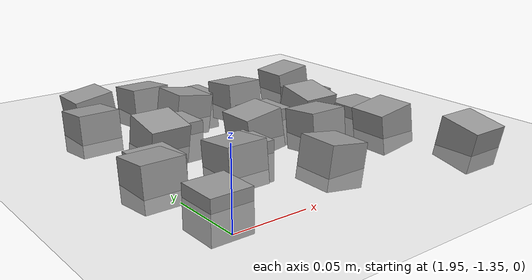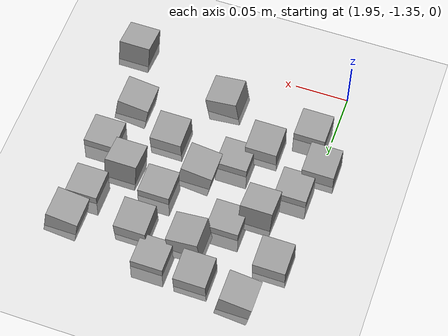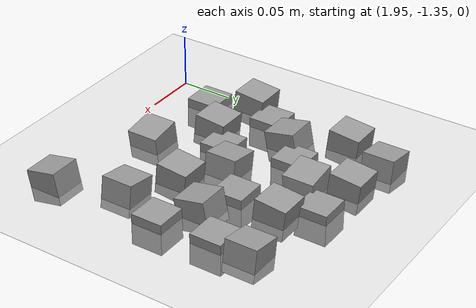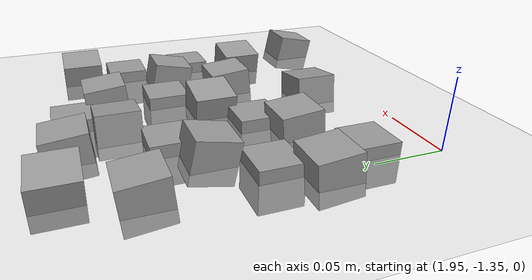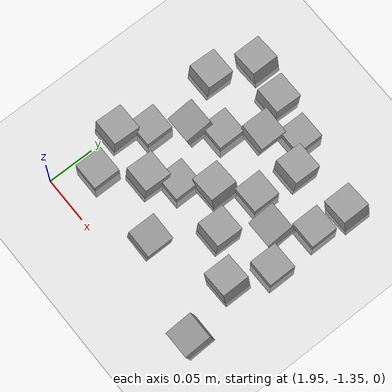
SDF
<sdf version="1.7">
 <world name="default">
  <model name="ground_plane">
   <static>1</static>
   <link name="link">
    <collision name="collision">
     <geometry><plane><normal>0 0 1</normal><size>100 100</size></plane></geometry>
     <surface><friction><ode><mu>100</mu><mu2>50</mu2></ode></friction></surface>
    </collision>
    <visual name="visual">
     <cast_shadows>0</cast_shadows>
     <geometry><plane><normal>0 0 1</normal><size>100 100</size></plane></geometry>
     <material>
      <script><uri>file://media/materials/scripts/gazebo.material</uri><name>Gazebo/Grey</name></script>
     </material>
    </visual>
   </link>
  </model>
  <model name="stone_road_10">
   <link name="link_0_clone_1">
    <inertial>
     <mass>1</mass>
     <inertia>
      <ixx>0.166667</ixx>
      <ixy>0</ixy>
      <ixz>0</ixz>
      <iyy>0.166667</iyy>
      <iyz>0</iyz>
      <izz>0.166667</izz>
     </inertia>
    </inertial>
    <pose>-0.022921 -0.129606 0.003778 0.2 -0 0</pose>
    <kinematic>1</kinematic>
    <visual name="visual">
     <geometry><box><size>0.03 0.03 0.03</size></box></geometry>
     <material>
      <lighting>1</lighting>
      <script><uri>file://media/materials/scripts/gazebo.material</uri><name>Gazebo/Grey</name></script>
      <shader type="pixel"><normal_map>__default__</normal_map></shader>
      <ambient>0.3 0.3 0.3 1</ambient>
      <diffuse>0.7 0.7 0.7 1</diffuse>
      <specular>0.01 0.01 0.01 1</specular>
      <emissive>0 0 0 1</emissive>
     </material>
    </visual>
    <collision name="collision">
     <geometry><box><size>0.03 0.03 0.03</size></box></geometry>
     <surface>
      <friction>
       <ode><mu>1</mu><mu2>1</mu2><fdir1>0 0 0</fdir1><slip1>0</slip1><slip2>0</slip2></ode>
       <torsional>
        <coefficient>1</coefficient>
        <patch_radius>0</patch_radius>
        <surface_radius>0</surface_radius>
        <use_patch_radius>1</use_patch_radius>
        <ode><slip>0</slip></ode>
       </torsional>
      </friction>
      <bounce><restitution_coefficient>0</restitution_coefficient><threshold>1e+06</threshold></bounce>
      <contact>
       <collide_without_contact>0</collide_without_contact>
       <collide_without_contact_bitmask>1</collide_without_contact_bitmask>
       <collide_bitmask>1</collide_bitmask>
       <ode>
        <soft_cfm>0</soft_cfm>
        <soft_erp>0.2</soft_erp>
        <kp>1e+13</kp>
        <kd>1</kd>
        <max_vel>0.01</max_vel>
        <min_depth>0</min_depth>
       </ode>
       <bullet>
        <split_impulse>1</split_impulse>
        <split_impulse_penetration_threshold>-0.01</split_impulse_penetration_threshold>
        <soft_cfm>0</soft_cfm>
        <soft_erp>0.2</soft_erp>
        <kp>1e+13</kp>
        <kd>1</kd>
       </bullet>
      </contact>
     </surface>
    </collision>
   </link>
   <link name="link_0_clone_12">
    <inertial>
     <mass>1</mass>
     <inertia>
      <ixx>0.166667</ixx>
      <ixy>0</ixy>
      <ixz>0</ixz>
      <iyy>0.166667</iyy>
      <iyz>0</iyz>
      <izz>0.166667</izz>
     </inertia>
    </inertial>
    <pose>0.142624 -0.262715 0.003778 0.2 -0 0</pose>
    <kinematic>1</kinematic>
    <visual name="visual">
     <geometry><box><size>0.03 0.03 0.03</size></box></geometry>
     <material>
      <lighting>1</lighting>
      <script><uri>file://media/materials/scripts/gazebo.material</uri><name>Gazebo/Grey</name></script>
      <shader type="pixel"><normal_map>__default__</normal_map></shader>
      <ambient>0.3 0.3 0.3 1</ambient>
      <diffuse>0.7 0.7 0.7 1</diffuse>
      <specular>0.01 0.01 0.01 1</specular>
      <emissive>0 0 0 1</emissive>
     </material>
    </visual>
    <collision name="collision">
     <geometry><box><size>0.03 0.03 0.03</size></box></geometry>
     <surface>
      <friction>
       <ode><mu>1</mu><mu2>1</mu2><fdir1>0 0 0</fdir1><slip1>0</slip1><slip2>0</slip2></ode>
       <torsional>
        <coefficient>1</coefficient>
        <patch_radius>0</patch_radius>
        <surface_radius>0</surface_radius>
        <use_patch_radius>1</use_patch_radius>
        <ode><slip>0</slip></ode>
       </torsional>
      </friction>
      <bounce><restitution_coefficient>0</restitution_coefficient><threshold>1e+06</threshold></bounce>
      <contact>
       <collide_without_contact>0</collide_without_contact>
       <collide_without_contact_bitmask>1</collide_without_contact_bitmask>
       <collide_bitmask>1</collide_bitmask>
       <ode>
        <soft_cfm>0</soft_cfm>
        <soft_erp>0.2</soft_erp>
        <kp>1e+13</kp>
        <kd>1</kd>
        <max_vel>0.01</max_vel>
        <min_depth>0</min_depth>
       </ode>
       <bullet>
        <split_impulse>1</split_impulse>
        <split_impulse_penetration_threshold>-0.01</split_impulse_penetration_threshold>
        <soft_cfm>0</soft_cfm>
        <soft_erp>0.2</soft_erp>
        <kp>1e+13</kp>
        <kd>1</kd>
       </bullet>
      </contact>
     </surface>
    </collision>
   </link>
   <link name="link_0_clone_13">
    <inertial>
     <mass>1</mass>
     <inertia>
      <ixx>0.166667</ixx>
      <ixy>0</ixy>
      <ixz>0</ixz>
      <iyy>0.166667</iyy>
      <iyz>0</iyz>
      <izz>0.166667</izz>
     </inertia>
    </inertial>
    <pose>0.107601 -0.134881 0.003778 0.2 -0 0</pose>
    <kinematic>1</kinematic>
    <visual name="visual">
     <geometry><box><size>0.03 0.03 0.03</size></box></geometry>
     <material>
      <lighting>1</lighting>
      <script><uri>file://media/materials/scripts/gazebo.material</uri><name>Gazebo/Grey</name></script>
      <shader type="pixel"><normal_map>__default__</normal_map></shader>
      <ambient>0.3 0.3 0.3 1</ambient>
      <diffuse>0.7 0.7 0.7 1</diffuse>
      <specular>0.01 0.01 0.01 1</specular>
      <emissive>0 0 0 1</emissive>
     </material>
    </visual>
    <collision name="collision">
     <geometry><box><size>0.03 0.03 0.03</size></box></geometry>
     <surface>
      <friction>
       <ode><mu>1</mu><mu2>1</mu2><fdir1>0 0 0</fdir1><slip1>0</slip1><slip2>0</slip2></ode>
       <torsional>
        <coefficient>1</coefficient>
        <patch_radius>0</patch_radius>
        <surface_radius>0</surface_radius>
        <use_patch_radius>1</use_patch_radius>
        <ode><slip>0</slip></ode>
       </torsional>
      </friction>
      <bounce><restitution_coefficient>0</restitution_coefficient><threshold>1e+06</threshold></bounce>
      <contact>
       <collide_without_contact>0</collide_without_contact>
       <collide_without_contact_bitmask>1</collide_without_contact_bitmask>
       <collide_bitmask>1</collide_bitmask>
       <ode>
        <soft_cfm>0</soft_cfm>
        <soft_erp>0.2</soft_erp>
        <kp>1e+13</kp>
        <kd>1</kd>
        <max_vel>0.01</max_vel>
        <min_depth>0</min_depth>
       </ode>
       <bullet>
        <split_impulse>1</split_impulse>
        <split_impulse_penetration_threshold>-0.01</split_impulse_penetration_threshold>
        <soft_cfm>0</soft_cfm>
        <soft_erp>0.2</soft_erp>
        <kp>1e+13</kp>
        <kd>1</kd>
       </bullet>
      </contact>
     </surface>
    </collision>
   </link>
   <link name="link_0_clone_2_clone_0">
    <inertial>
     <mass>1</mass>
     <inertia>
      <ixx>0.166667</ixx>
      <ixy>0</ixy>
      <ixz>0</ixz>
      <iyy>0.166667</iyy>
      <iyz>0</iyz>
      <izz>0.166667</izz>
     </inertia>
    </inertial>
    <pose>0.026852 -0.0813 0.003778 0 0.15 0</pose>
    <kinematic>1</kinematic>
    <visual name="visual">
     <geometry><box><size>0.03 0.03 0.03</size></box></geometry>
     <material>
      <lighting>1</lighting>
      <script><uri>file://media/materials/scripts/gazebo.material</uri><name>Gazebo/Grey</name></script>
      <shader type="pixel"><normal_map>__default__</normal_map></shader>
      <ambient>0.3 0.3 0.3 1</ambient>
      <diffuse>0.7 0.7 0.7 1</diffuse>
      <specular>0.01 0.01 0.01 1</specular>
      <emissive>0 0 0 1</emissive>
     </material>
    </visual>
    <collision name="collision">
     <geometry><box><size>0.03 0.03 0.03</size></box></geometry>
     <surface>
      <friction>
       <ode><mu>1</mu><mu2>1</mu2><fdir1>0 0 0</fdir1><slip1>0</slip1><slip2>0</slip2></ode>
       <torsional>
        <coefficient>1</coefficient>
        <patch_radius>0</patch_radius>
        <surface_radius>0</surface_radius>
        <use_patch_radius>1</use_patch_radius>
        <ode><slip>0</slip></ode>
       </torsional>
      </friction>
      <bounce><restitution_coefficient>0</restitution_coefficient><threshold>1e+06</threshold></bounce>
      <contact>
       <collide_without_contact>0</collide_without_contact>
       <collide_without_contact_bitmask>1</collide_without_contact_bitmask>
       <collide_bitmask>1</collide_bitmask>
       <ode>
        <soft_cfm>0</soft_cfm>
        <soft_erp>0.2</soft_erp>
        <kp>1e+13</kp>
        <kd>1</kd>
        <max_vel>0.01</max_vel>
        <min_depth>0</min_depth>
       </ode>
       <bullet>
        <split_impulse>1</split_impulse>
        <split_impulse_penetration_threshold>-0.01</split_impulse_penetration_threshold>
        <soft_cfm>0</soft_cfm>
        <soft_erp>0.2</soft_erp>
        <kp>1e+13</kp>
        <kd>1</kd>
       </bullet>
      </contact>
     </surface>
    </collision>
   </link>
   <link name="link_0_clone_2_clone_2_clone_0">
    <inertial>
     <mass>1</mass>
     <inertia>
      <ixx>0.166667</ixx>
      <ixy>0</ixy>
      <ixz>0</ixz>
      <iyy>0.166667</iyy>
      <iyz>0</iyz>
      <izz>0.166667</izz>
     </inertia>
    </inertial>
    <pose>-0.032874 -0.039714 0.003778 0 -0.15 0</pose>
    <kinematic>1</kinematic>
    <visual name="visual">
     <geometry><box><size>0.03 0.03 0.03</size></box></geometry>
     <material>
      <lighting>1</lighting>
      <script><uri>file://media/materials/scripts/gazebo.material</uri><name>Gazebo/Grey</name></script>
      <shader type="pixel"><normal_map>__default__</normal_map></shader>
      <ambient>0.3 0.3 0.3 1</ambient>
      <diffuse>0.7 0.7 0.7 1</diffuse>
      <specular>0.01 0.01 0.01 1</specular>
      <emissive>0 0 0 1</emissive>
     </material>
    </visual>
    <collision name="collision">
     <geometry><box><size>0.03 0.03 0.03</size></box></geometry>
     <surface>
      <friction>
       <ode><mu>1</mu><mu2>1</mu2><fdir1>0 0 0</fdir1><slip1>0</slip1><slip2>0</slip2></ode>
       <torsional>
        <coefficient>1</coefficient>
        <patch_radius>0</patch_radius>
        <surface_radius>0</surface_radius>
        <use_patch_radius>1</use_patch_radius>
        <ode><slip>0</slip></ode>
       </torsional>
      </friction>
      <bounce><restitution_coefficient>0</restitution_coefficient><threshold>1e+06</threshold></bounce>
      <contact>
       <collide_without_contact>0</collide_without_contact>
       <collide_without_contact_bitmask>1</collide_without_contact_bitmask>
       <collide_bitmask>1</collide_bitmask>
       <ode>
        <soft_cfm>0</soft_cfm>
        <soft_erp>0.2</soft_erp>
        <kp>1e+13</kp>
        <kd>1</kd>
        <max_vel>0.01</max_vel>
        <min_depth>0</min_depth>
       </ode>
       <bullet>
        <split_impulse>1</split_impulse>
        <split_impulse_penetration_threshold>-0.01</split_impulse_penetration_threshold>
        <soft_cfm>0</soft_cfm>
        <soft_erp>0.2</soft_erp>
        <kp>1e+13</kp>
        <kd>1</kd>
       </bullet>
      </contact>
     </surface>
    </collision>
   </link>
   <link name="link_0_clone_2_clone_2_clone_13_clone_clone_10">
    <inertial>
     <mass>1</mass>
     <inertia>
      <ixx>0.166667</ixx>
      <ixy>0</ixy>
      <ixz>0</ixz>
      <iyy>0.166667</iyy>
      <iyz>0</iyz>
      <izz>0.166667</izz>
     </inertia>
    </inertial>
    <pose>-0.006825 -0.196489 0.003778 -0.1 0 0</pose>
    <kinematic>1</kinematic>
    <visual name="visual">
     <geometry><box><size>0.03 0.03 0.03</size></box></geometry>
     <material>
      <lighting>1</lighting>
      <script><uri>file://media/materials/scripts/gazebo.material</uri><name>Gazebo/Grey</name></script>
      <shader type="pixel"><normal_map>__default__</normal_map></shader>
      <ambient>0.3 0.3 0.3 1</ambient>
      <diffuse>0.7 0.7 0.7 1</diffuse>
      <specular>0.01 0.01 0.01 1</specular>
      <emissive>0 0 0 1</emissive>
     </material>
    </visual>
    <collision name="collision">
     <geometry><box><size>0.03 0.03 0.03</size></box></geometry>
     <surface>
      <friction>
       <ode><mu>1</mu><mu2>1</mu2><fdir1>0 0 0</fdir1><slip1>0</slip1><slip2>0</slip2></ode>
       <torsional>
        <coefficient>1</coefficient>
        <patch_radius>0</patch_radius>
        <surface_radius>0</surface_radius>
        <use_patch_radius>1</use_patch_radius>
        <ode><slip>0</slip></ode>
       </torsional>
      </friction>
      <bounce><restitution_coefficient>0</restitution_coefficient><threshold>1e+06</threshold></bounce>
      <contact>
       <collide_without_contact>0</collide_without_contact>
       <collide_without_contact_bitmask>1</collide_without_contact_bitmask>
       <collide_bitmask>1</collide_bitmask>
       <ode>
        <soft_cfm>0</soft_cfm>
        <soft_erp>0.2</soft_erp>
        <kp>1e+13</kp>
        <kd>1</kd>
        <max_vel>0.01</max_vel>
        <min_depth>0</min_depth>
       </ode>
       <bullet>
        <split_impulse>1</split_impulse>
        <split_impulse_penetration_threshold>-0.01</split_impulse_penetration_threshold>
        <soft_cfm>0</soft_cfm>
        <soft_erp>0.2</soft_erp>
        <kp>1e+13</kp>
        <kd>1</kd>
       </bullet>
      </contact>
     </surface>
    </collision>
   </link>
   <link name="link_0_clone_2_clone_2_clone_13_clone_clone_12">
    <inertial>
     <mass>1</mass>
     <inertia>
      <ixx>0.166667</ixx>
      <ixy>0</ixy>
      <ixz>0</ixz>
      <iyy>0.166667</iyy>
      <iyz>0</iyz>
      <izz>0.166667</izz>
     </inertia>
    </inertial>
    <pose>0.078701 -0.177208 0.003778 -0.1 0 0</pose>
    <kinematic>1</kinematic>
    <visual name="visual">
     <geometry><box><size>0.03 0.03 0.03</size></box></geometry>
     <material>
      <lighting>1</lighting>
      <script><uri>file://media/materials/scripts/gazebo.material</uri><name>Gazebo/Grey</name></script>
      <shader type="pixel"><normal_map>__default__</normal_map></shader>
      <ambient>0.3 0.3 0.3 1</ambient>
      <diffuse>0.7 0.7 0.7 1</diffuse>
      <specular>0.01 0.01 0.01 1</specular>
      <emissive>0 0 0 1</emissive>
     </material>
    </visual>
    <collision name="collision">
     <geometry><box><size>0.03 0.03 0.03</size></box></geometry>
     <surface>
      <friction>
       <ode><mu>1</mu><mu2>1</mu2><fdir1>0 0 0</fdir1><slip1>0</slip1><slip2>0</slip2></ode>
       <torsional>
        <coefficient>1</coefficient>
        <patch_radius>0</patch_radius>
        <surface_radius>0</surface_radius>
        <use_patch_radius>1</use_patch_radius>
        <ode><slip>0</slip></ode>
       </torsional>
      </friction>
      <bounce><restitution_coefficient>0</restitution_coefficient><threshold>1e+06</threshold></bounce>
      <contact>
       <collide_without_contact>0</collide_without_contact>
       <collide_without_contact_bitmask>1</collide_without_contact_bitmask>
       <collide_bitmask>1</collide_bitmask>
       <ode>
        <soft_cfm>0</soft_cfm>
        <soft_erp>0.2</soft_erp>
        <kp>1e+13</kp>
        <kd>1</kd>
        <max_vel>0.01</max_vel>
        <min_depth>0</min_depth>
       </ode>
       <bullet>
        <split_impulse>1</split_impulse>
        <split_impulse_penetration_threshold>-0.01</split_impulse_penetration_threshold>
        <soft_cfm>0</soft_cfm>
        <soft_erp>0.2</soft_erp>
        <kp>1e+13</kp>
        <kd>1</kd>
       </bullet>
      </contact>
     </surface>
    </collision>
   </link>
   <link name="link_0_clone_2_clone_2_clone_13_clone_clone_16_clone_14">
    <inertial>
     <mass>1</mass>
     <inertia>
      <ixx>0.166667</ixx>
      <ixy>0</ixy>
      <ixz>0</ixz>
      <iyy>0.166667</iyy>
      <iyz>0</iyz>
      <izz>0.166667</izz>
     </inertia>
    </inertial>
    <pose>0.051911 -0.054424 -0.006222 0 -0 0</pose>
    <kinematic>1</kinematic>
    <visual name="visual">
     <geometry><box><size>0.03 0.03 0.03</size></box></geometry>
     <material>
      <lighting>1</lighting>
      <script><uri>file://media/materials/scripts/gazebo.material</uri><name>Gazebo/Grey</name></script>
      <shader type="pixel"><normal_map>__default__</normal_map></shader>
      <ambient>0.3 0.3 0.3 1</ambient>
      <diffuse>0.7 0.7 0.7 1</diffuse>
      <specular>0.01 0.01 0.01 1</specular>
      <emissive>0 0 0 1</emissive>
     </material>
    </visual>
    <collision name="collision">
     <geometry><box><size>0.03 0.03 0.03</size></box></geometry>
     <surface>
      <friction>
       <ode><mu>1</mu><mu2>1</mu2><fdir1>0 0 0</fdir1><slip1>0</slip1><slip2>0</slip2></ode>
       <torsional>
        <coefficient>1</coefficient>
        <patch_radius>0</patch_radius>
        <surface_radius>0</surface_radius>
        <use_patch_radius>1</use_patch_radius>
        <ode><slip>0</slip></ode>
       </torsional>
      </friction>
      <bounce><restitution_coefficient>0</restitution_coefficient><threshold>1e+06</threshold></bounce>
      <contact>
       <collide_without_contact>0</collide_without_contact>
       <collide_without_contact_bitmask>1</collide_without_contact_bitmask>
       <collide_bitmask>1</collide_bitmask>
       <ode>
        <soft_cfm>0</soft_cfm>
        <soft_erp>0.2</soft_erp>
        <kp>1e+13</kp>
        <kd>1</kd>
        <max_vel>0.01</max_vel>
        <min_depth>0</min_depth>
       </ode>
       <bullet>
        <split_impulse>1</split_impulse>
        <split_impulse_penetration_threshold>-0.01</split_impulse_penetration_threshold>
        <soft_cfm>0</soft_cfm>
        <soft_erp>0.2</soft_erp>
        <kp>1e+13</kp>
        <kd>1</kd>
       </bullet>
      </contact>
     </surface>
    </collision>
   </link>
   <link name="link_0_clone_2_clone_2_clone_13_clone_clone_16_clone_15">
    <inertial>
     <mass>1</mass>
     <inertia>
      <ixx>0.166667</ixx>
      <ixy>0</ixy>
      <ixz>0</ixz>
      <iyy>0.166667</iyy>
      <iyz>0</iyz>
      <izz>0.166667</izz>
     </inertia>
    </inertial>
    <pose>0.133032 -0.103459 -0.006222 0 -0 0</pose>
    <kinematic>1</kinematic>
    <visual name="visual">
     <geometry><box><size>0.03 0.03 0.03</size></box></geometry>
     <material>
      <lighting>1</lighting>
      <script><uri>file://media/materials/scripts/gazebo.material</uri><name>Gazebo/Grey</name></script>
      <shader type="pixel"><normal_map>__default__</normal_map></shader>
      <ambient>0.3 0.3 0.3 1</ambient>
      <diffuse>0.7 0.7 0.7 1</diffuse>
      <specular>0.01 0.01 0.01 1</specular>
      <emissive>0 0 0 1</emissive>
     </material>
    </visual>
    <collision name="collision">
     <geometry><box><size>0.03 0.03 0.03</size></box></geometry>
     <surface>
      <friction>
       <ode><mu>1</mu><mu2>1</mu2><fdir1>0 0 0</fdir1><slip1>0</slip1><slip2>0</slip2></ode>
       <torsional>
        <coefficient>1</coefficient>
        <patch_radius>0</patch_radius>
        <surface_radius>0</surface_radius>
        <use_patch_radius>1</use_patch_radius>
        <ode><slip>0</slip></ode>
       </torsional>
      </friction>
      <bounce><restitution_coefficient>0</restitution_coefficient><threshold>1e+06</threshold></bounce>
      <contact>
       <collide_without_contact>0</collide_without_contact>
       <collide_without_contact_bitmask>1</collide_without_contact_bitmask>
       <collide_bitmask>1</collide_bitmask>
       <ode>
        <soft_cfm>0</soft_cfm>
        <soft_erp>0.2</soft_erp>
        <kp>1e+13</kp>
        <kd>1</kd>
        <max_vel>0.01</max_vel>
        <min_depth>0</min_depth>
       </ode>
       <bullet>
        <split_impulse>1</split_impulse>
        <split_impulse_penetration_threshold>-0.01</split_impulse_penetration_threshold>
        <soft_cfm>0</soft_cfm>
        <soft_erp>0.2</soft_erp>
        <kp>1e+13</kp>
        <kd>1</kd>
       </bullet>
      </contact>
     </surface>
    </collision>
   </link>
   <link name="link_0_clone_2_clone_2_clone_13_clone_clone_16_clone_16">
    <inertial>
     <mass>1</mass>
     <inertia>
      <ixx>0.166667</ixx>
      <ixy>0</ixy>
      <ixz>0</ixz>
      <iyy>0.166667</iyy>
      <iyz>0</iyz>
      <izz>0.166667</izz>
     </inertia>
    </inertial>
    <pose>0.071475 -0.124425 -0.006222 0 -0 0</pose>
    <kinematic>1</kinematic>
    <visual name="visual">
     <geometry><box><size>0.03 0.03 0.03</size></box></geometry>
     <material>
      <lighting>1</lighting>
      <script><uri>file://media/materials/scripts/gazebo.material</uri><name>Gazebo/Grey</name></script>
      <shader type="pixel"><normal_map>__default__</normal_map></shader>
      <ambient>0.3 0.3 0.3 1</ambient>
      <diffuse>0.7 0.7 0.7 1</diffuse>
      <specular>0.01 0.01 0.01 1</specular>
      <emissive>0 0 0 1</emissive>
     </material>
    </visual>
    <collision name="collision">
     <geometry><box><size>0.03 0.03 0.03</size></box></geometry>
     <surface>
      <friction>
       <ode><mu>1</mu><mu2>1</mu2><fdir1>0 0 0</fdir1><slip1>0</slip1><slip2>0</slip2></ode>
       <torsional>
        <coefficient>1</coefficient>
        <patch_radius>0</patch_radius>
        <surface_radius>0</surface_radius>
        <use_patch_radius>1</use_patch_radius>
        <ode><slip>0</slip></ode>
       </torsional>
      </friction>
      <bounce><restitution_coefficient>0</restitution_coefficient><threshold>1e+06</threshold></bounce>
      <contact>
       <collide_without_contact>0</collide_without_contact>
       <collide_without_contact_bitmask>1</collide_without_contact_bitmask>
       <collide_bitmask>1</collide_bitmask>
       <ode>
        <soft_cfm>0</soft_cfm>
        <soft_erp>0.2</soft_erp>
        <kp>1e+13</kp>
        <kd>1</kd>
        <max_vel>0.01</max_vel>
        <min_depth>0</min_depth>
       </ode>
       <bullet>
        <split_impulse>1</split_impulse>
        <split_impulse_penetration_threshold>-0.01</split_impulse_penetration_threshold>
        <soft_cfm>0</soft_cfm>
        <soft_erp>0.2</soft_erp>
        <kp>1e+13</kp>
        <kd>1</kd>
       </bullet>
      </contact>
     </surface>
    </collision>
   </link>
   <link name="link_0_clone_2_clone_2_clone_13_clone_clone_16_clone_17">
    <inertial>
     <mass>1</mass>
     <inertia>
      <ixx>0.166667</ixx>
      <ixy>0</ixy>
      <ixz>0</ixz>
      <iyy>0.166667</iyy>
      <iyz>0</iyz>
      <izz>0.166667</izz>
     </inertia>
    </inertial>
    <pose>0.014877 -0.175392 -0.006222 0 -0 0</pose>
    <kinematic>1</kinematic>
    <visual name="visual">
     <geometry><box><size>0.03 0.03 0.03</size></box></geometry>
     <material>
      <lighting>1</lighting>
      <script><uri>file://media/materials/scripts/gazebo.material</uri><name>Gazebo/Grey</name></script>
      <shader type="pixel"><normal_map>__default__</normal_map></shader>
      <ambient>0.3 0.3 0.3 1</ambient>
      <diffuse>0.7 0.7 0.7 1</diffuse>
      <specular>0.01 0.01 0.01 1</specular>
      <emissive>0 0 0 1</emissive>
     </material>
    </visual>
    <collision name="collision">
     <geometry><box><size>0.03 0.03 0.03</size></box></geometry>
     <surface>
      <friction>
       <ode><mu>1</mu><mu2>1</mu2><fdir1>0 0 0</fdir1><slip1>0</slip1><slip2>0</slip2></ode>
       <torsional>
        <coefficient>1</coefficient>
        <patch_radius>0</patch_radius>
        <surface_radius>0</surface_radius>
        <use_patch_radius>1</use_patch_radius>
        <ode><slip>0</slip></ode>
       </torsional>
      </friction>
      <bounce><restitution_coefficient>0</restitution_coefficient><threshold>1e+06</threshold></bounce>
      <contact>
       <collide_without_contact>0</collide_without_contact>
       <collide_without_contact_bitmask>1</collide_without_contact_bitmask>
       <collide_bitmask>1</collide_bitmask>
       <ode>
        <soft_cfm>0</soft_cfm>
        <soft_erp>0.2</soft_erp>
        <kp>1e+13</kp>
        <kd>1</kd>
        <max_vel>0.01</max_vel>
        <min_depth>0</min_depth>
       </ode>
       <bullet>
        <split_impulse>1</split_impulse>
        <split_impulse_penetration_threshold>-0.01</split_impulse_penetration_threshold>
        <soft_cfm>0</soft_cfm>
        <soft_erp>0.2</soft_erp>
        <kp>1e+13</kp>
        <kd>1</kd>
       </bullet>
      </contact>
     </surface>
    </collision>
   </link>
   <link name="link_0_clone_2_clone_2_clone_13_clone_clone_16_clone_18">
    <inertial>
     <mass>1</mass>
     <inertia>
      <ixx>0.166667</ixx>
      <ixy>0</ixy>
      <ixz>0</ixz>
      <iyy>0.166667</iyy>
      <iyz>0</iyz>
      <izz>0.166667</izz>
     </inertia>
    </inertial>
    <pose>0.137197 -0.158693 -0.006222 0 -0 0</pose>
    <kinematic>1</kinematic>
    <visual name="visual">
     <geometry><box><size>0.03 0.03 0.03</size></box></geometry>
     <material>
      <lighting>1</lighting>
      <script><uri>file://media/materials/scripts/gazebo.material</uri><name>Gazebo/Grey</name></script>
      <shader type="pixel"><normal_map>__default__</normal_map></shader>
      <ambient>0.3 0.3 0.3 1</ambient>
      <diffuse>0.7 0.7 0.7 1</diffuse>
      <specular>0.01 0.01 0.01 1</specular>
      <emissive>0 0 0 1</emissive>
     </material>
    </visual>
    <collision name="collision">
     <geometry><box><size>0.03 0.03 0.03</size></box></geometry>
     <surface>
      <friction>
       <ode><mu>1</mu><mu2>1</mu2><fdir1>0 0 0</fdir1><slip1>0</slip1><slip2>0</slip2></ode>
       <torsional>
        <coefficient>1</coefficient>
        <patch_radius>0</patch_radius>
        <surface_radius>0</surface_radius>
        <use_patch_radius>1</use_patch_radius>
        <ode><slip>0</slip></ode>
       </torsional>
      </friction>
      <bounce><restitution_coefficient>0</restitution_coefficient><threshold>1e+06</threshold></bounce>
      <contact>
       <collide_without_contact>0</collide_without_contact>
       <collide_without_contact_bitmask>1</collide_without_contact_bitmask>
       <collide_bitmask>1</collide_bitmask>
       <ode>
        <soft_cfm>0</soft_cfm>
        <soft_erp>0.2</soft_erp>
        <kp>1e+13</kp>
        <kd>1</kd>
        <max_vel>0.01</max_vel>
        <min_depth>0</min_depth>
       </ode>
       <bullet>
        <split_impulse>1</split_impulse>
        <split_impulse_penetration_threshold>-0.01</split_impulse_penetration_threshold>
        <soft_cfm>0</soft_cfm>
        <soft_erp>0.2</soft_erp>
        <kp>1e+13</kp>
        <kd>1</kd>
       </bullet>
      </contact>
     </surface>
    </collision>
   </link>
   <link name="link_0_clone_2_clone_2_clone_13_clone_clone_16_clone_29">
    <inertial>
     <mass>1</mass>
     <inertia>
      <ixx>0.166667</ixx>
      <ixy>0</ixy>
      <ixz>0</ixz>
      <iyy>0.166667</iyy>
      <iyz>0</iyz>
      <izz>0.166667</izz>
     </inertia>
    </inertial>
    <pose>-0.042964 -0.229632 -0.006222 0 -0 0</pose>
    <kinematic>1</kinematic>
    <visual name="visual">
     <geometry><box><size>0.03 0.03 0.03</size></box></geometry>
     <material>
      <lighting>1</lighting>
      <script><uri>file://media/materials/scripts/gazebo.material</uri><name>Gazebo/Grey</name></script>
      <shader type="pixel"><normal_map>__default__</normal_map></shader>
      <ambient>0.3 0.3 0.3 1</ambient>
      <diffuse>0.7 0.7 0.7 1</diffuse>
      <specular>0.01 0.01 0.01 1</specular>
      <emissive>0 0 0 1</emissive>
     </material>
    </visual>
    <collision name="collision">
     <geometry><box><size>0.03 0.03 0.03</size></box></geometry>
     <surface>
      <friction>
       <ode><mu>1</mu><mu2>1</mu2><fdir1>0 0 0</fdir1><slip1>0</slip1><slip2>0</slip2></ode>
       <torsional>
        <coefficient>1</coefficient>
        <patch_radius>0</patch_radius>
        <surface_radius>0</surface_radius>
        <use_patch_radius>1</use_patch_radius>
        <ode><slip>0</slip></ode>
       </torsional>
      </friction>
      <bounce><restitution_coefficient>0</restitution_coefficient><threshold>1e+06</threshold></bounce>
      <contact>
       <collide_without_contact>0</collide_without_contact>
       <collide_without_contact_bitmask>1</collide_without_contact_bitmask>
       <collide_bitmask>1</collide_bitmask>
       <ode>
        <soft_cfm>0</soft_cfm>
        <soft_erp>0.2</soft_erp>
        <kp>1e+13</kp>
        <kd>1</kd>
        <max_vel>0.01</max_vel>
        <min_depth>0</min_depth>
       </ode>
       <bullet>
        <split_impulse>1</split_impulse>
        <split_impulse_penetration_threshold>-0.01</split_impulse_penetration_threshold>
        <soft_cfm>0</soft_cfm>
        <soft_erp>0.2</soft_erp>
        <kp>1e+13</kp>
        <kd>1</kd>
       </bullet>
      </contact>
     </surface>
    </collision>
   </link>
   <link name="link_0_clone_2_clone_2_clone_13_clone_clone_16_clone_7">
    <inertial>
     <mass>1</mass>
     <inertia>
      <ixx>0.166667</ixx>
      <ixy>0</ixy>
      <ixz>0</ixz>
      <iyy>0.166667</iyy>
      <iyz>0</iyz>
      <izz>0.166667</izz>
     </inertia>
    </inertial>
    <pose>0.000883 -0.109959 -0.006222 0 -0 0</pose>
    <kinematic>1</kinematic>
    <visual name="visual">
     <geometry><box><size>0.03 0.03 0.03</size></box></geometry>
     <material>
      <lighting>1</lighting>
      <script><uri>file://media/materials/scripts/gazebo.material</uri><name>Gazebo/Grey</name></script>
      <shader type="pixel"><normal_map>__default__</normal_map></shader>
      <ambient>0.3 0.3 0.3 1</ambient>
      <diffuse>0.7 0.7 0.7 1</diffuse>
      <specular>0.01 0.01 0.01 1</specular>
      <emissive>0 0 0 1</emissive>
     </material>
    </visual>
    <collision name="collision">
     <geometry><box><size>0.03 0.03 0.03</size></box></geometry>
     <surface>
      <friction>
       <ode><mu>1</mu><mu2>1</mu2><fdir1>0 0 0</fdir1><slip1>0</slip1><slip2>0</slip2></ode>
       <torsional>
        <coefficient>1</coefficient>
        <patch_radius>0</patch_radius>
        <surface_radius>0</surface_radius>
        <use_patch_radius>1</use_patch_radius>
        <ode><slip>0</slip></ode>
       </torsional>
      </friction>
      <bounce><restitution_coefficient>0</restitution_coefficient><threshold>1e+06</threshold></bounce>
      <contact>
       <collide_without_contact>0</collide_without_contact>
       <collide_without_contact_bitmask>1</collide_without_contact_bitmask>
       <collide_bitmask>1</collide_bitmask>
       <ode>
        <soft_cfm>0</soft_cfm>
        <soft_erp>0.2</soft_erp>
        <kp>1e+13</kp>
        <kd>1</kd>
        <max_vel>0.01</max_vel>
        <min_depth>0</min_depth>
       </ode>
       <bullet>
        <split_impulse>1</split_impulse>
        <split_impulse_penetration_threshold>-0.01</split_impulse_penetration_threshold>
        <soft_cfm>0</soft_cfm>
        <soft_erp>0.2</soft_erp>
        <kp>1e+13</kp>
        <kd>1</kd>
       </bullet>
      </contact>
     </surface>
    </collision>
   </link>
   <link name="link_0_clone_2_clone_2_clone_13_clone_clone_16_clone_8">
    <inertial>
     <mass>1</mass>
     <inertia>
      <ixx>0.166667</ixx>
      <ixy>0</ixy>
      <ixz>0</ixz>
      <iyy>0.166667</iyy>
      <iyz>0</iyz>
      <izz>0.166667</izz>
     </inertia>
    </inertial>
    <pose>-0.045715 -0.162471 -0.006222 0 -0 0</pose>
    <kinematic>1</kinematic>
    <visual name="visual">
     <geometry><box><size>0.03 0.03 0.03</size></box></geometry>
     <material>
      <lighting>1</lighting>
      <script><uri>file://media/materials/scripts/gazebo.material</uri><name>Gazebo/Grey</name></script>
      <shader type="pixel"><normal_map>__default__</normal_map></shader>
      <ambient>0.3 0.3 0.3 1</ambient>
      <diffuse>0.7 0.7 0.7 1</diffuse>
      <specular>0.01 0.01 0.01 1</specular>
      <emissive>0 0 0 1</emissive>
     </material>
    </visual>
    <collision name="collision">
     <geometry><box><size>0.03 0.03 0.03</size></box></geometry>
     <surface>
      <friction>
       <ode><mu>1</mu><mu2>1</mu2><fdir1>0 0 0</fdir1><slip1>0</slip1><slip2>0</slip2></ode>
       <torsional>
        <coefficient>1</coefficient>
        <patch_radius>0</patch_radius>
        <surface_radius>0</surface_radius>
        <use_patch_radius>1</use_patch_radius>
        <ode><slip>0</slip></ode>
       </torsional>
      </friction>
      <bounce><restitution_coefficient>0</restitution_coefficient><threshold>1e+06</threshold></bounce>
      <contact>
       <collide_without_contact>0</collide_without_contact>
       <collide_without_contact_bitmask>1</collide_without_contact_bitmask>
       <collide_bitmask>1</collide_bitmask>
       <ode>
        <soft_cfm>0</soft_cfm>
        <soft_erp>0.2</soft_erp>
        <kp>1e+13</kp>
        <kd>1</kd>
        <max_vel>0.01</max_vel>
        <min_depth>0</min_depth>
       </ode>
       <bullet>
        <split_impulse>1</split_impulse>
        <split_impulse_penetration_threshold>-0.01</split_impulse_penetration_threshold>
        <soft_cfm>0</soft_cfm>
        <soft_erp>0.2</soft_erp>
        <kp>1e+13</kp>
        <kd>1</kd>
       </bullet>
      </contact>
     </surface>
    </collision>
   </link>
   <link name="link_0_clone_2_clone_2_clone_13_clone_clone_5">
    <inertial>
     <mass>1</mass>
     <inertia>
      <ixx>0.166667</ixx>
      <ixy>0</ixy>
      <ixz>0</ixz>
      <iyy>0.166667</iyy>
      <iyz>0</iyz>
      <izz>0.166667</izz>
     </inertia>
    </inertial>
    <pose>0.076743 -0.079785 0.003778 -0.1 0 0</pose>
    <kinematic>1</kinematic>
    <visual name="visual">
     <geometry><box><size>0.03 0.03 0.03</size></box></geometry>
     <material>
      <lighting>1</lighting>
      <script><uri>file://media/materials/scripts/gazebo.material</uri><name>Gazebo/Grey</name></script>
      <shader type="pixel"><normal_map>__default__</normal_map></shader>
      <ambient>0.3 0.3 0.3 1</ambient>
      <diffuse>0.7 0.7 0.7 1</diffuse>
      <specular>0.01 0.01 0.01 1</specular>
      <emissive>0 0 0 1</emissive>
     </material>
    </visual>
    <collision name="collision">
     <geometry><box><size>0.03 0.03 0.03</size></box></geometry>
     <surface>
      <friction>
       <ode><mu>1</mu><mu2>1</mu2><fdir1>0 0 0</fdir1><slip1>0</slip1><slip2>0</slip2></ode>
       <torsional>
        <coefficient>1</coefficient>
        <patch_radius>0</patch_radius>
        <surface_radius>0</surface_radius>
        <use_patch_radius>1</use_patch_radius>
        <ode><slip>0</slip></ode>
       </torsional>
      </friction>
      <bounce><restitution_coefficient>0</restitution_coefficient><threshold>1e+06</threshold></bounce>
      <contact>
       <collide_without_contact>0</collide_without_contact>
       <collide_without_contact_bitmask>1</collide_without_contact_bitmask>
       <collide_bitmask>1</collide_bitmask>
       <ode>
        <soft_cfm>0</soft_cfm>
        <soft_erp>0.2</soft_erp>
        <kp>1e+13</kp>
        <kd>1</kd>
        <max_vel>0.01</max_vel>
        <min_depth>0</min_depth>
       </ode>
       <bullet>
        <split_impulse>1</split_impulse>
        <split_impulse_penetration_threshold>-0.01</split_impulse_penetration_threshold>
        <soft_cfm>0</soft_cfm>
        <soft_erp>0.2</soft_erp>
        <kp>1e+13</kp>
        <kd>1</kd>
       </bullet>
      </contact>
     </surface>
    </collision>
   </link>
   <link name="link_0_clone_2_clone_2_clone_13_clone_clone_6">
    <inertial>
     <mass>1</mass>
     <inertia>
      <ixx>0.166667</ixx>
      <ixy>0</ixy>
      <ixz>0</ixz>
      <iyy>0.166667</iyy>
      <iyz>0</iyz>
      <izz>0.166667</izz>
     </inertia>
    </inertial>
    <pose>0.009445 -0.048118 0.003778 -0.1 0 0</pose>
    <kinematic>1</kinematic>
    <visual name="visual">
     <geometry><box><size>0.03 0.03 0.03</size></box></geometry>
     <material>
      <lighting>1</lighting>
      <script><uri>file://media/materials/scripts/gazebo.material</uri><name>Gazebo/Grey</name></script>
      <shader type="pixel"><normal_map>__default__</normal_map></shader>
      <ambient>0.3 0.3 0.3 1</ambient>
      <diffuse>0.7 0.7 0.7 1</diffuse>
      <specular>0.01 0.01 0.01 1</specular>
      <emissive>0 0 0 1</emissive>
     </material>
    </visual>
    <collision name="collision">
     <geometry><box><size>0.03 0.03 0.03</size></box></geometry>
     <surface>
      <friction>
       <ode><mu>1</mu><mu2>1</mu2><fdir1>0 0 0</fdir1><slip1>0</slip1><slip2>0</slip2></ode>
       <torsional>
        <coefficient>1</coefficient>
        <patch_radius>0</patch_radius>
        <surface_radius>0</surface_radius>
        <use_patch_radius>1</use_patch_radius>
        <ode><slip>0</slip></ode>
       </torsional>
      </friction>
      <bounce><restitution_coefficient>0</restitution_coefficient><threshold>1e+06</threshold></bounce>
      <contact>
       <collide_without_contact>0</collide_without_contact>
       <collide_without_contact_bitmask>1</collide_without_contact_bitmask>
       <collide_bitmask>1</collide_bitmask>
       <ode>
        <soft_cfm>0</soft_cfm>
        <soft_erp>0.2</soft_erp>
        <kp>1e+13</kp>
        <kd>1</kd>
        <max_vel>0.01</max_vel>
        <min_depth>0</min_depth>
       </ode>
       <bullet>
        <split_impulse>1</split_impulse>
        <split_impulse_penetration_threshold>-0.01</split_impulse_penetration_threshold>
        <soft_cfm>0</soft_cfm>
        <soft_erp>0.2</soft_erp>
        <kp>1e+13</kp>
        <kd>1</kd>
       </bullet>
      </contact>
     </surface>
    </collision>
   </link>
   <link name="link_0_clone_2_clone_2_clone_13_clone_clone_8">
    <inertial>
     <mass>1</mass>
     <inertia>
      <ixx>0.166667</ixx>
      <ixy>0</ixy>
      <ixz>0</ixz>
      <iyy>0.166667</iyy>
      <iyz>0</iyz>
      <izz>0.166667</izz>
     </inertia>
    </inertial>
    <pose>-0.051207 -0.083778 0.003778 -0.1 0 0</pose>
    <kinematic>1</kinematic>
    <visual name="visual">
     <geometry><box><size>0.03 0.03 0.03</size></box></geometry>
     <material>
      <lighting>1</lighting>
      <script><uri>file://media/materials/scripts/gazebo.material</uri><name>Gazebo/Grey</name></script>
      <shader type="pixel"><normal_map>__default__</normal_map></shader>
      <ambient>0.3 0.3 0.3 1</ambient>
      <diffuse>0.7 0.7 0.7 1</diffuse>
      <specular>0.01 0.01 0.01 1</specular>
      <emissive>0 0 0 1</emissive>
     </material>
    </visual>
    <collision name="collision">
     <geometry><box><size>0.03 0.03 0.03</size></box></geometry>
     <surface>
      <friction>
       <ode><mu>1</mu><mu2>1</mu2><fdir1>0 0 0</fdir1><slip1>0</slip1><slip2>0</slip2></ode>
       <torsional>
        <coefficient>1</coefficient>
        <patch_radius>0</patch_radius>
        <surface_radius>0</surface_radius>
        <use_patch_radius>1</use_patch_radius>
        <ode><slip>0</slip></ode>
       </torsional>
      </friction>
      <bounce><restitution_coefficient>0</restitution_coefficient><threshold>1e+06</threshold></bounce>
      <contact>
       <collide_without_contact>0</collide_without_contact>
       <collide_without_contact_bitmask>1</collide_without_contact_bitmask>
       <collide_bitmask>1</collide_bitmask>
       <ode>
        <soft_cfm>0</soft_cfm>
        <soft_erp>0.2</soft_erp>
        <kp>1e+13</kp>
        <kd>1</kd>
        <max_vel>0.01</max_vel>
        <min_depth>0</min_depth>
       </ode>
       <bullet>
        <split_impulse>1</split_impulse>
        <split_impulse_penetration_threshold>-0.01</split_impulse_penetration_threshold>
        <soft_cfm>0</soft_cfm>
        <soft_erp>0.2</soft_erp>
        <kp>1e+13</kp>
        <kd>1</kd>
       </bullet>
      </contact>
     </surface>
    </collision>
   </link>
   <link name="link_0_clone_2_clone_2_clone_13_clone_clone_9">
    <inertial>
     <mass>1</mass>
     <inertia>
      <ixx>0.166667</ixx>
      <ixy>0</ixy>
      <ixz>0</ixz>
      <iyy>0.166667</iyy>
      <iyz>0</iyz>
      <izz>0.166667</izz>
     </inertia>
    </inertial>
    <pose>-0.062692 -0.190617 0.003778 -0.1 0 0</pose>
    <kinematic>1</kinematic>
    <visual name="visual">
     <geometry><box><size>0.03 0.03 0.03</size></box></geometry>
     <material>
      <lighting>1</lighting>
      <script><uri>file://media/materials/scripts/gazebo.material</uri><name>Gazebo/Grey</name></script>
      <shader type="pixel"><normal_map>__default__</normal_map></shader>
      <ambient>0.3 0.3 0.3 1</ambient>
      <diffuse>0.7 0.7 0.7 1</diffuse>
      <specular>0.01 0.01 0.01 1</specular>
      <emissive>0 0 0 1</emissive>
     </material>
    </visual>
    <collision name="collision">
     <geometry><box><size>0.03 0.03 0.03</size></box></geometry>
     <surface>
      <friction>
       <ode><mu>1</mu><mu2>1</mu2><fdir1>0 0 0</fdir1><slip1>0</slip1><slip2>0</slip2></ode>
       <torsional>
        <coefficient>1</coefficient>
        <patch_radius>0</patch_radius>
        <surface_radius>0</surface_radius>
        <use_patch_radius>1</use_patch_radius>
        <ode><slip>0</slip></ode>
       </torsional>
      </friction>
      <bounce><restitution_coefficient>0</restitution_coefficient><threshold>1e+06</threshold></bounce>
      <contact>
       <collide_without_contact>0</collide_without_contact>
       <collide_without_contact_bitmask>1</collide_without_contact_bitmask>
       <collide_bitmask>1</collide_bitmask>
       <ode>
        <soft_cfm>0</soft_cfm>
        <soft_erp>0.2</soft_erp>
        <kp>1e+13</kp>
        <kd>1</kd>
        <max_vel>0.01</max_vel>
        <min_depth>0</min_depth>
       </ode>
       <bullet>
        <split_impulse>1</split_impulse>
        <split_impulse_penetration_threshold>-0.01</split_impulse_penetration_threshold>
        <soft_cfm>0</soft_cfm>
        <soft_erp>0.2</soft_erp>
        <kp>1e+13</kp>
        <kd>1</kd>
       </bullet>
      </contact>
     </surface>
    </collision>
   </link>
   <link name="link_0_clone_2_clone_2_clone_4">
    <inertial>
     <mass>1</mass>
     <inertia>
      <ixx>0.166667</ixx>
      <ixy>0</ixy>
      <ixz>0</ixz>
      <iyy>0.166667</iyy>
      <iyz>0</iyz>
      <izz>0.166667</izz>
     </inertia>
    </inertial>
    <pose>0.042048 -0.151731 0.003778 0 -0.15 0</pose>
    <kinematic>1</kinematic>
    <visual name="visual">
     <geometry><box><size>0.03 0.03 0.03</size></box></geometry>
     <material>
      <lighting>1</lighting>
      <script><uri>file://media/materials/scripts/gazebo.material</uri><name>Gazebo/Grey</name></script>
      <shader type="pixel"><normal_map>__default__</normal_map></shader>
      <ambient>0.3 0.3 0.3 1</ambient>
      <diffuse>0.7 0.7 0.7 1</diffuse>
      <specular>0.01 0.01 0.01 1</specular>
      <emissive>0 0 0 1</emissive>
     </material>
    </visual>
    <collision name="collision">
     <geometry><box><size>0.03 0.03 0.03</size></box></geometry>
     <surface>
      <friction>
       <ode><mu>1</mu><mu2>1</mu2><fdir1>0 0 0</fdir1><slip1>0</slip1><slip2>0</slip2></ode>
       <torsional>
        <coefficient>1</coefficient>
        <patch_radius>0</patch_radius>
        <surface_radius>0</surface_radius>
        <use_patch_radius>1</use_patch_radius>
        <ode><slip>0</slip></ode>
       </torsional>
      </friction>
      <bounce><restitution_coefficient>0</restitution_coefficient><threshold>1e+06</threshold></bounce>
      <contact>
       <collide_without_contact>0</collide_without_contact>
       <collide_without_contact_bitmask>1</collide_without_contact_bitmask>
       <collide_bitmask>1</collide_bitmask>
       <ode>
        <soft_cfm>0</soft_cfm>
        <soft_erp>0.2</soft_erp>
        <kp>1e+13</kp>
        <kd>1</kd>
        <max_vel>0.01</max_vel>
        <min_depth>0</min_depth>
       </ode>
       <bullet>
        <split_impulse>1</split_impulse>
        <split_impulse_penetration_threshold>-0.01</split_impulse_penetration_threshold>
        <soft_cfm>0</soft_cfm>
        <soft_erp>0.2</soft_erp>
        <kp>1e+13</kp>
        <kd>1</kd>
       </bullet>
      </contact>
     </surface>
    </collision>
   </link>
   <link name="link_0_clone_2_clone_2_clone_5">
    <inertial>
     <mass>1</mass>
     <inertia>
      <ixx>0.166667</ixx>
      <ixy>0</ixy>
      <ixz>0</ixz>
      <iyy>0.166667</iyy>
      <iyz>0</iyz>
      <izz>0.166667</izz>
     </inertia>
    </inertial>
    <pose>0.13842 -0.067468 0.003778 0 -0.15 0</pose>
    <kinematic>1</kinematic>
    <visual name="visual">
     <geometry><box><size>0.03 0.03 0.03</size></box></geometry>
     <material>
      <lighting>1</lighting>
      <script><uri>file://media/materials/scripts/gazebo.material</uri><name>Gazebo/Grey</name></script>
      <shader type="pixel"><normal_map>__default__</normal_map></shader>
      <ambient>0.3 0.3 0.3 1</ambient>
      <diffuse>0.7 0.7 0.7 1</diffuse>
      <specular>0.01 0.01 0.01 1</specular>
      <emissive>0 0 0 1</emissive>
     </material>
    </visual>
    <collision name="collision">
     <geometry><box><size>0.03 0.03 0.03</size></box></geometry>
     <surface>
      <friction>
       <ode><mu>1</mu><mu2>1</mu2><fdir1>0 0 0</fdir1><slip1>0</slip1><slip2>0</slip2></ode>
       <torsional>
        <coefficient>1</coefficient>
        <patch_radius>0</patch_radius>
        <surface_radius>0</surface_radius>
        <use_patch_radius>1</use_patch_radius>
        <ode><slip>0</slip></ode>
       </torsional>
      </friction>
      <bounce><restitution_coefficient>0</restitution_coefficient><threshold>1e+06</threshold></bounce>
      <contact>
       <collide_without_contact>0</collide_without_contact>
       <collide_without_contact_bitmask>1</collide_without_contact_bitmask>
       <collide_bitmask>1</collide_bitmask>
       <ode>
        <soft_cfm>0</soft_cfm>
        <soft_erp>0.2</soft_erp>
        <kp>1e+13</kp>
        <kd>1</kd>
        <max_vel>0.01</max_vel>
        <min_depth>0</min_depth>
       </ode>
       <bullet>
        <split_impulse>1</split_impulse>
        <split_impulse_penetration_threshold>-0.01</split_impulse_penetration_threshold>
        <soft_cfm>0</soft_cfm>
        <soft_erp>0.2</soft_erp>
        <kp>1e+13</kp>
        <kd>1</kd>
       </bullet>
      </contact>
     </surface>
    </collision>
   </link>
   <link name="link_0_clone_2_clone_2_clone_8">
    <inertial>
     <mass>1</mass>
     <inertia>
      <ixx>0.166667</ixx>
      <ixy>0</ixy>
      <ixz>0</ixz>
      <iyy>0.166667</iyy>
      <iyz>0</iyz>
      <izz>0.166667</izz>
     </inertia>
    </inertial>
    <pose>0.122141 -0.201696 0.003778 0 -0.15 0</pose>
    <kinematic>1</kinematic>
    <visual name="visual">
     <geometry><box><size>0.03 0.03 0.03</size></box></geometry>
     <material>
      <lighting>1</lighting>
      <script><uri>file://media/materials/scripts/gazebo.material</uri><name>Gazebo/Grey</name></script>
      <shader type="pixel"><normal_map>__default__</normal_map></shader>
      <ambient>0.3 0.3 0.3 1</ambient>
      <diffuse>0.7 0.7 0.7 1</diffuse>
      <specular>0.01 0.01 0.01 1</specular>
      <emissive>0 0 0 1</emissive>
     </material>
    </visual>
    <collision name="collision">
     <geometry><box><size>0.03 0.03 0.03</size></box></geometry>
     <surface>
      <friction>
       <ode><mu>1</mu><mu2>1</mu2><fdir1>0 0 0</fdir1><slip1>0</slip1><slip2>0</slip2></ode>
       <torsional>
        <coefficient>1</coefficient>
        <patch_radius>0</patch_radius>
        <surface_radius>0</surface_radius>
        <use_patch_radius>1</use_patch_radius>
        <ode><slip>0</slip></ode>
       </torsional>
      </friction>
      <bounce><restitution_coefficient>0</restitution_coefficient><threshold>1e+06</threshold></bounce>
      <contact>
       <collide_without_contact>0</collide_without_contact>
       <collide_without_contact_bitmask>1</collide_without_contact_bitmask>
       <collide_bitmask>1</collide_bitmask>
       <ode>
        <soft_cfm>0</soft_cfm>
        <soft_erp>0.2</soft_erp>
        <kp>1e+13</kp>
        <kd>1</kd>
        <max_vel>0.01</max_vel>
        <min_depth>0</min_depth>
       </ode>
       <bullet>
        <split_impulse>1</split_impulse>
        <split_impulse_penetration_threshold>-0.01</split_impulse_penetration_threshold>
        <soft_cfm>0</soft_cfm>
        <soft_erp>0.2</soft_erp>
        <kp>1e+13</kp>
        <kd>1</kd>
       </bullet>
      </contact>
     </surface>
    </collision>
   </link>
   <link name="link_0_clone_2_clone_7">
    <inertial>
     <mass>1</mass>
     <inertia>
      <ixx>0.166667</ixx>
      <ixy>0</ixy>
      <ixz>0</ixz>
      <iyy>0.166667</iyy>
      <iyz>0</iyz>
      <izz>0.166667</izz>
     </inertia>
    </inertial>
    <pose>0.04255 -0.232691 0.003778 0 0.15 0</pose>
    <kinematic>1</kinematic>
    <visual name="visual">
     <geometry><box><size>0.03 0.03 0.03</size></box></geometry>
     <material>
      <lighting>1</lighting>
      <script><uri>file://media/materials/scripts/gazebo.material</uri><name>Gazebo/Grey</name></script>
      <shader type="pixel"><normal_map>__default__</normal_map></shader>
      <ambient>0.3 0.3 0.3 1</ambient>
      <diffuse>0.7 0.7 0.7 1</diffuse>
      <specular>0.01 0.01 0.01 1</specular>
      <emissive>0 0 0 1</emissive>
     </material>
    </visual>
    <collision name="collision">
     <geometry><box><size>0.03 0.03 0.03</size></box></geometry>
     <surface>
      <friction>
       <ode><mu>1</mu><mu2>1</mu2><fdir1>0 0 0</fdir1><slip1>0</slip1><slip2>0</slip2></ode>
       <torsional>
        <coefficient>1</coefficient>
        <patch_radius>0</patch_radius>
        <surface_radius>0</surface_radius>
        <use_patch_radius>1</use_patch_radius>
        <ode><slip>0</slip></ode>
       </torsional>
      </friction>
      <bounce><restitution_coefficient>0</restitution_coefficient><threshold>1e+06</threshold></bounce>
      <contact>
       <collide_without_contact>0</collide_without_contact>
       <collide_without_contact_bitmask>1</collide_without_contact_bitmask>
       <collide_bitmask>1</collide_bitmask>
       <ode>
        <soft_cfm>0</soft_cfm>
        <soft_erp>0.2</soft_erp>
        <kp>1e+13</kp>
        <kd>1</kd>
        <max_vel>0.01</max_vel>
        <min_depth>0</min_depth>
       </ode>
       <bullet>
        <split_impulse>1</split_impulse>
        <split_impulse_penetration_threshold>-0.01</split_impulse_penetration_threshold>
        <soft_cfm>0</soft_cfm>
        <soft_erp>0.2</soft_erp>
        <kp>1e+13</kp>
        <kd>1</kd>
       </bullet>
      </contact>
     </surface>
    </collision>
   </link>
   <static>0</static>
   <pose>2.01299 -1.07769 -0 0 -0 0</pose>
  </model>
 </world>
</sdf>
